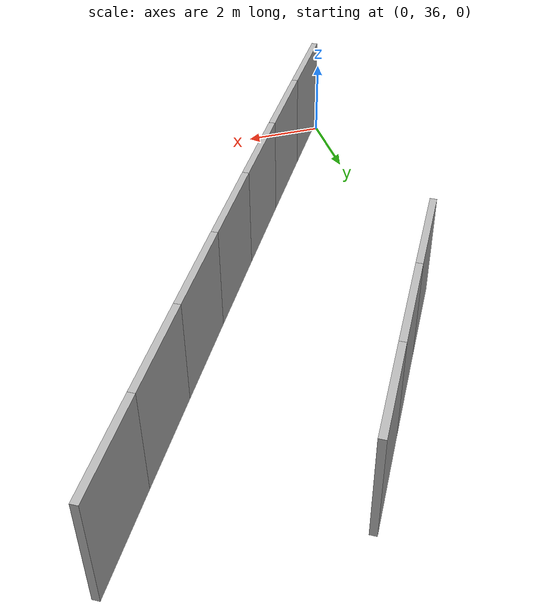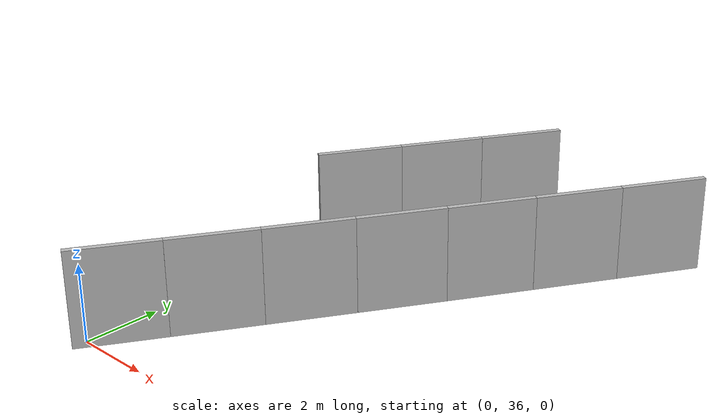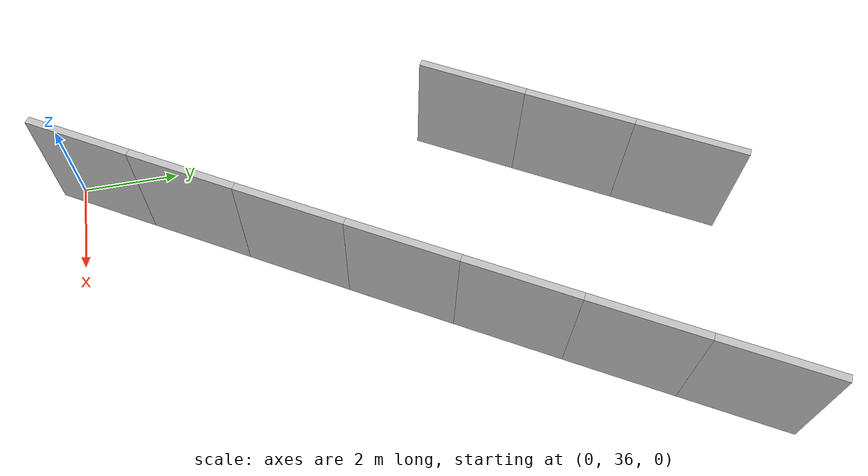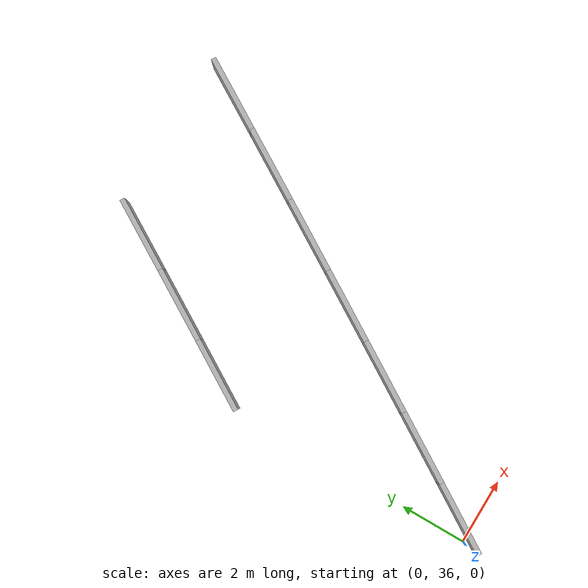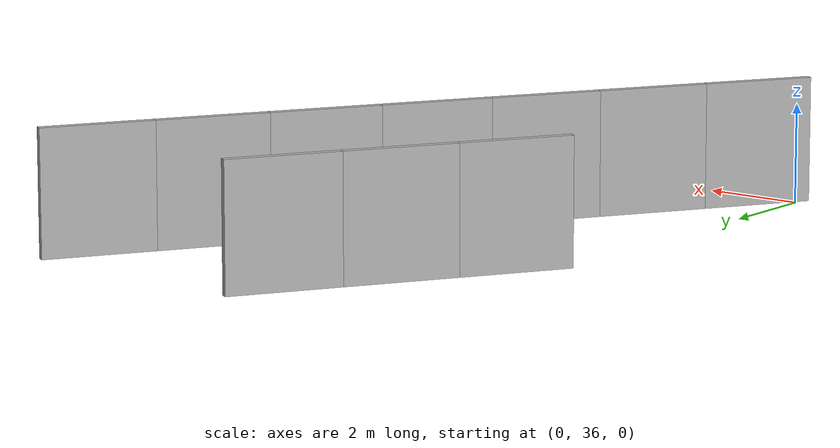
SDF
<?xml version="1.0" ?>
<sdf version="1.6">
  <model name="sps_4414">
    <pose frame="">0 0 0 0 -0 0</pose>
    <static>1</static>
    <self_collide>0</self_collide>
    <allow_auto_disable>0</allow_auto_disable>
    <link name="Wall4314">
      <kinematic>0</kinematic>
      <gravity>1</gravity>
      <self_collide>0</self_collide>
      <collision name="collision">
        <geometry>
          <box>
            <size>2.25463 0.15 2.5</size>
          </box>
        </geometry>
        <pose frame="">0 0 0 0 -0 0</pose>
      </collision>
      <visual name="visual">
        <geometry>
          <box>
            <size>2.25463 0.15 2.5</size>
          </box>
        </geometry>
        <pose frame="">0 0 0 0 -0 0</pose>
        <cast_shadows>1</cast_shadows>
        <transparency>0.0</transparency>
      </visual>
      <pose frame="">0.573356 36.5674 1.25 0 -0 1.01676</pose>
    </link>
    <link name="Wall4315">
      <kinematic>0</kinematic>
      <gravity>1</gravity>
      <self_collide>0</self_collide>
      <collision name="collision">
        <geometry>
          <box>
            <size>2.2547 0.15 2.5</size>
          </box>
        </geometry>
        <pose frame="">0 0 0 0 -0 0</pose>
      </collision>
      <visual name="visual">
        <geometry>
          <box>
            <size>2.2547 0.15 2.5</size>
          </box>
        </geometry>
        <pose frame="">0 0 0 0 -0 0</pose>
        <cast_shadows>1</cast_shadows>
        <transparency>0.0</transparency>
      </visual>
      <pose frame="">1.75716 38.4863 1.25 0 -0 1.01929</pose>
    </link>
    <link name="Wall4316">
      <kinematic>0</kinematic>
      <gravity>1</gravity>
      <self_collide>0</self_collide>
      <collision name="collision">
        <geometry>
          <box>
            <size>2.25464 0.15 2.5</size>
          </box>
        </geometry>
        <pose frame="">0 0 0 0 -0 0</pose>
      </collision>
      <visual name="visual">
        <geometry>
          <box>
            <size>2.25464 0.15 2.5</size>
          </box>
        </geometry>
        <pose frame="">0 0 0 0 -0 0</pose>
        <cast_shadows>1</cast_shadows>
        <transparency>0.0</transparency>
      </visual>
      <pose frame="">2.93636 40.408 1.25 0 -0 1.02156</pose>
    </link>
    <link name="Wall4317">
      <kinematic>0</kinematic>
      <gravity>1</gravity>
      <self_collide>0</self_collide>
      <collision name="collision">
        <geometry>
          <box>
            <size>2.25463 0.15 2.5</size>
          </box>
        </geometry>
        <pose frame="">0 0 0 0 -0 0</pose>
      </collision>
      <visual name="visual">
        <geometry>
          <box>
            <size>2.25463 0.15 2.5</size>
          </box>
        </geometry>
        <pose frame="">0 0 0 0 -0 0</pose>
        <cast_shadows>1</cast_shadows>
        <transparency>0.0</transparency>
      </visual>
      <pose frame="">4.11095 42.3325 1.25 0 -0 1.02406</pose>
    </link>
    <link name="Wall4318">
      <kinematic>0</kinematic>
      <gravity>1</gravity>
      <self_collide>0</self_collide>
      <collision name="collision">
        <geometry>
          <box>
            <size>2.25459 0.15 2.5</size>
          </box>
        </geometry>
        <pose frame="">0 0 0 0 -0 0</pose>
      </collision>
      <visual name="visual">
        <geometry>
          <box>
            <size>2.25459 0.15 2.5</size>
          </box>
        </geometry>
        <pose frame="">0 0 0 0 -0 0</pose>
        <cast_shadows>1</cast_shadows>
        <transparency>0.0</transparency>
      </visual>
      <pose frame="">5.28094 44.2598 1.25 0 -0 1.02633</pose>
    </link>
    <link name="Wall4319">
      <kinematic>0</kinematic>
      <gravity>1</gravity>
      <self_collide>0</self_collide>
      <collision name="collision">
        <geometry>
          <box>
            <size>2.25531 0.15 2.5</size>
          </box>
        </geometry>
        <pose frame="">0 0 0 0 -0 0</pose>
      </collision>
      <visual name="visual">
        <geometry>
          <box>
            <size>2.25531 0.15 2.5</size>
          </box>
        </geometry>
        <pose frame="">0 0 0 0 -0 0</pose>
        <cast_shadows>1</cast_shadows>
        <transparency>0.0</transparency>
      </visual>
      <pose frame="">6.44674 46.19 1.25 0 -0 1.02858</pose>
    </link>
    <link name="Wall4320">
      <kinematic>0</kinematic>
      <gravity>1</gravity>
      <self_collide>0</self_collide>
      <collision name="collision">
        <geometry>
          <box>
            <size>2.25468 0.15 2.5</size>
          </box>
        </geometry>
        <pose frame="">0 0 0 0 -0 0</pose>
      </collision>
      <visual name="visual">
        <geometry>
          <box>
            <size>2.25468 0.15 2.5</size>
          </box>
        </geometry>
        <pose frame="">0 0 0 0 -0 0</pose>
        <cast_shadows>1</cast_shadows>
        <transparency>0.0</transparency>
      </visual>
      <pose frame="">7.60796 48.123 1.25 0 -0 1.0311</pose>
    </link>
    <link name="Wall6042">
      <kinematic>0</kinematic>
      <gravity>1</gravity>
      <self_collide>0</self_collide>
      <collision name="collision">
        <geometry>
          <box>
            <size>2.24485 0.15 2.5</size>
          </box>
        </geometry>
        <pose frame="">0 0 0 0 -0 0</pose>
      </collision>
      <visual name="visual">
        <geometry>
          <box>
            <size>2.24485 0.15 2.5</size>
          </box>
        </geometry>
        <pose frame="">0 0 0 0 -0 0</pose>
        <cast_shadows>1</cast_shadows>
        <transparency>0.0</transparency>
      </visual>
      <pose frame="">0.575553 44.4854 1.25 0 -0 1.0239</pose>
    </link>
    <link name="Wall6043">
      <kinematic>0</kinematic>
      <gravity>1</gravity>
      <self_collide>0</self_collide>
      <collision name="collision">
        <geometry>
          <box>
            <size>2.2447 0.15 2.5</size>
          </box>
        </geometry>
        <pose frame="">0 0 0 0 -0 0</pose>
      </collision>
      <visual name="visual">
        <geometry>
          <box>
            <size>2.2447 0.15 2.5</size>
          </box>
        </geometry>
        <pose frame="">0 0 0 0 -0 0</pose>
        <cast_shadows>1</cast_shadows>
        <transparency>0.0</transparency>
      </visual>
      <pose frame="">1.74056 46.4042 1.25 0 -0 1.02637</pose>
    </link>
    <link name="Wall6044">
      <kinematic>0</kinematic>
      <gravity>1</gravity>
      <self_collide>0</self_collide>
      <collision name="collision">
        <geometry>
          <box>
            <size>2.24479 0.15 2.5</size>
          </box>
        </geometry>
        <pose frame="">0 0 0 0 -0 0</pose>
      </collision>
      <visual name="visual">
        <geometry>
          <box>
            <size>2.24479 0.15 2.5</size>
          </box>
        </geometry>
        <pose frame="">0 0 0 0 -0 0</pose>
        <cast_shadows>1</cast_shadows>
        <transparency>0.0</transparency>
      </visual>
      <pose frame="">2.90087 48.3258 1.25 0 -0 1.02877</pose>
    </link>
  </model>
</sdf>
